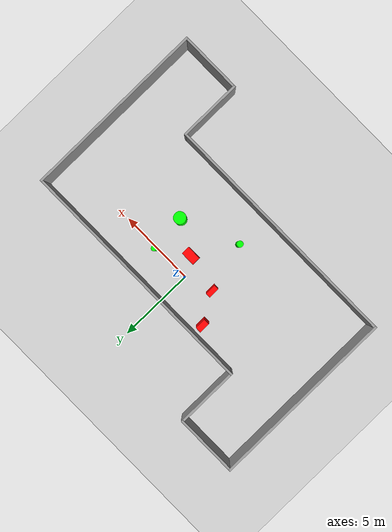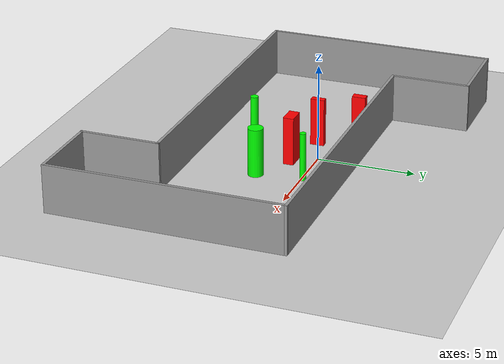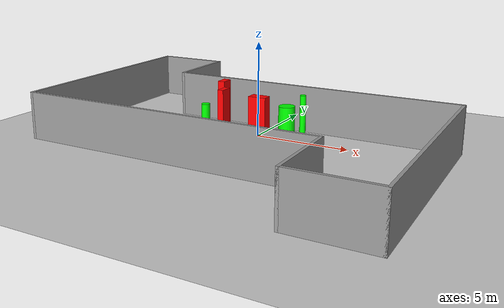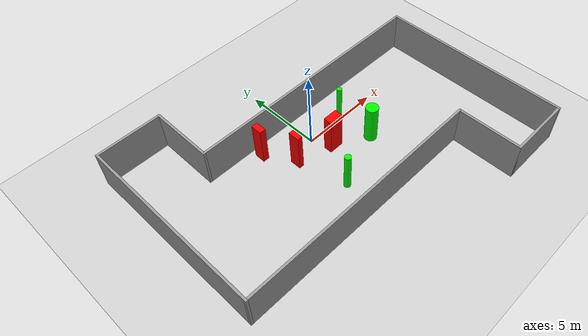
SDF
<sdf version="1.7">
 <world name="default">
  <light name="sun" type="directional">
   <pose>0 0 10 0 -0 0</pose>
   <diffuse>0.8 0.8 0.8 1</diffuse>
   <specular>0.2 0.2 0.2 1</specular>
   <attenuation>
    <range>1000</range>
    <constant>0.9</constant>
    <linear>0.01</linear>
    <quadratic>0.001</quadratic>
   </attenuation>
   <direction>-0.5 0.1 -0.9</direction>
   <spot><inner_angle>0</inner_angle><outer_angle>0</outer_angle><falloff>0</falloff></spot>
  </light>
  <model name="ground_plane">
   <static>1</static>
   <link name="link">
    <collision name="collision">
     <geometry><plane><normal>0 0 1</normal><size>100 100</size></plane></geometry>
     <surface>
      <contact><collide_bitmask>65535</collide_bitmask></contact>
      <friction><ode><mu>100</mu><mu2>50</mu2></ode></friction>
     </surface>
    </collision>
    <visual name="visual">
     <cast_shadows>0</cast_shadows>
     <geometry><plane><normal>0 0 1</normal><size>100 100</size></plane></geometry>
     <material>
      <script><uri>file://media/materials/scripts/gazebo.material</uri><name>Gazebo/Grey</name></script>
     </material>
    </visual>
   </link>
  </model>
  <gravity>0 0 -9.8</gravity>
  <magnetic_field>6e-06 2.3e-05 -4.2e-05</magnetic_field>
  <atmosphere type="adiabatic"/>
  <physics type="ode">
   <max_step_size>0.001</max_step_size>
   <real_time_factor>1</real_time_factor>
   <real_time_update_rate>1000</real_time_update_rate>
  </physics>
  <scene><ambient>0.4 0.4 0.4 1</ambient><background>0.7 0.7 0.7 1</background><shadows>1</shadows></scene>
  <spherical_coordinates>
   <surface_model>EARTH_WGS84</surface_model>
   <latitude_deg>0</latitude_deg>
   <longitude_deg>0</longitude_deg>
   <elevation>0</elevation>
   <heading_deg>0</heading_deg>
  </spherical_coordinates>
  <model name="my_base_walls">
   <link name="Wall_13">
    <collision name="Wall_13_Collision">
     <geometry><box><size>12.15 0.15 2.5</size></box></geometry>
     <pose>0 0 1.25 0 -0 0</pose>
    </collision>
    <visual name="Wall_13_Visual">
     <pose>0 0 1.25 0 -0 0</pose>
     <geometry><box><size>12.15 0.15 2.5</size></box></geometry>
     <material>
      <script><uri>file://media/materials/scripts/gazebo.material</uri><name>Gazebo/Grey</name></script>
      <ambient>1 1 1 1</ambient>
     </material>
     <meta><layer>0</layer></meta>
    </visual>
    <pose>10 -2 0 0 -0 1.5708</pose>
   </link>
   <link name="Wall_15">
    <collision name="Wall_15_Collision">
     <geometry><box><size>16.15 0.15 2.5</size></box></geometry>
     <pose>0 0 1.25 0 -0 0</pose>
    </collision>
    <visual name="Wall_15_Visual">
     <pose>0 0 1.25 0 -0 0</pose>
     <geometry><box><size>16.15 0.15 2.5</size></box></geometry>
     <material>
      <script><uri>file://media/materials/scripts/gazebo.material</uri><name>Gazebo/Grey</name></script>
      <ambient>1 1 1 1</ambient>
     </material>
     <meta><layer>0</layer></meta>
    </visual>
    <pose>2 4 0 0 -0 3.14159</pose>
   </link>
   <link name="Wall_17">
    <collision name="Wall_17_Collision">
     <geometry><box><size>4.15 0.15 2.5</size></box></geometry>
     <pose>0 0 1.25 0 -0 0</pose>
    </collision>
    <visual name="Wall_17_Visual">
     <pose>0 0 1.25 0 -0 0</pose>
     <geometry><box><size>4.15 0.15 2.5</size></box></geometry>
     <material>
      <script><uri>file://media/materials/scripts/gazebo.material</uri><name>Gazebo/Grey</name></script>
      <ambient>1 1 1 1</ambient>
     </material>
     <meta><layer>0</layer></meta>
    </visual>
    <pose>6 -6 0 0 -0 -1.5708</pose>
   </link>
   <link name="Wall_19">
    <collision name="Wall_19_Collision">
     <geometry><box><size>12.15 0.15 2.5</size></box></geometry>
     <pose>0 0 1.25 0 -0 0</pose>
    </collision>
    <visual name="Wall_19_Visual">
     <pose>0 0 1.25 0 -0 0</pose>
     <geometry><box><size>12.15 0.15 2.5</size></box></geometry>
     <material>
      <script><uri>file://media/materials/scripts/gazebo.material</uri><name>Gazebo/Grey</name></script>
      <ambient>1 1 1 1</ambient>
     </material>
     <meta><layer>0</layer></meta>
    </visual>
    <pose>-10 2 0 0 -0 1.5708</pose>
   </link>
   <link name="Wall_21">
    <collision name="Wall_21_Collision">
     <geometry><box><size>4.15 0.15 2.5</size></box></geometry>
     <pose>0 0 1.25 0 -0 0</pose>
    </collision>
    <visual name="Wall_21_Visual">
     <pose>0 0 1.25 0 -0 0</pose>
     <geometry><box><size>4.15 0.15 2.5</size></box></geometry>
     <material>
      <script><uri>file://media/materials/scripts/gazebo.material</uri><name>Gazebo/Grey</name></script>
      <ambient>1 1 1 1</ambient>
     </material>
     <meta><layer>0</layer></meta>
    </visual>
    <pose>-8 8 0 0 -0 0</pose>
   </link>
   <link name="Wall_23">
    <collision name="Wall_23_Collision">
     <geometry><box><size>4.15 0.15 2.5</size></box></geometry>
     <pose>0 0 1.25 0 -0 0</pose>
    </collision>
    <visual name="Wall_23_Visual">
     <pose>0 0 1.25 0 -0 0</pose>
     <geometry><box><size>4.15 0.15 2.5</size></box></geometry>
     <material>
      <script><uri>file://media/materials/scripts/gazebo.material</uri><name>Gazebo/Grey</name></script>
      <ambient>1 1 1 1</ambient>
     </material>
     <meta><layer>0</layer></meta>
    </visual>
    <pose>-6 6 0 0 -0 -1.5708</pose>
   </link>
   <link name="Wall_25">
    <collision name="Wall_25_Collision">
     <geometry><box><size>4.15 0.15 2.5</size></box></geometry>
     <pose>0 0 1.25 0 -0 0</pose>
    </collision>
    <visual name="Wall_25_Visual">
     <pose>0 0 1.25 0 -0 0</pose>
     <geometry><box><size>4.15 0.15 2.5</size></box></geometry>
     <material>
      <script><uri>file://media/materials/scripts/gazebo.material</uri><name>Gazebo/Grey</name></script>
      <ambient>1 1 1 1</ambient>
     </material>
     <meta><layer>0</layer></meta>
    </visual>
    <pose>8 -8 0 0 -0 0</pose>
   </link>
   <link name="Wall_9">
    <collision name="Wall_9_Collision">
     <geometry><box><size>16.15 0.15 2.5</size></box></geometry>
     <pose>0 0 1.25 0 -0 0</pose>
    </collision>
    <visual name="Wall_9_Visual">
     <pose>0 0 1.25 0 -0 0</pose>
     <geometry><box><size>16.15 0.15 2.5</size></box></geometry>
     <material>
      <script><uri>file://media/materials/scripts/gazebo.material</uri><name>Gazebo/Grey</name></script>
      <ambient>1 1 1 1</ambient>
     </material>
     <meta><layer>0</layer></meta>
    </visual>
    <pose>-2 -4 0 0 -0 3.14159</pose>
   </link>
   <static>1</static>
   <pose>-0 -2 0 0 -0 0</pose>
  </model>
  <model name="cylinder1">
   <static>1</static>
   <link name="link">
    <inertial>
     <mass>1</mass>
     <inertia><ixx>0.5</ixx><ixy>0</ixy><ixz>0</ixz><iyy>0.5</iyy><iyz>0</iyz><izz>1</izz></inertia>
    </inertial>
    <collision name="collision">
     <geometry><cylinder><radius>0.3918550057563066</radius><length>2.5</length></cylinder></geometry>
    </collision>
    <visual name="visual">
     <geometry><cylinder><radius>0.3918550057563066</radius><length>2.5</length></cylinder></geometry>
     <material>
      <ambient>0 1 0 1</ambient>
      <diffuse>0 1 0 1</diffuse>
      <specular>0.1 0.1 0.1 1</specular>
      <emissive>0 0 0 0</emissive>
     </material>
    </visual>
   </link>
   <pose>2.710437666546291 -2.2889374997301575 1.25 0 0 0</pose>
  </model>
  <model name="cylinder2">
   <static>1</static>
   <link name="link">
    <inertial>
     <mass>1</mass>
     <inertia><ixx>0.5</ixx><ixy>0</ixy><ixz>0</ixz><iyy>0.5</iyy><iyz>0</iyz><izz>1</izz></inertia>
    </inertial>
    <collision name="collision">
     <geometry><cylinder><radius>0.20399306593085706</radius><length>2.5</length></cylinder></geometry>
    </collision>
    <visual name="visual">
     <geometry><cylinder><radius>0.20399306593085706</radius><length>2.5</length></cylinder></geometry>
     <material>
      <ambient>0 1 0 1</ambient>
      <diffuse>0 1 0 1</diffuse>
      <specular>0.1 0.1 0.1 1</specular>
      <emissive>0 0 0 0</emissive>
     </material>
    </visual>
   </link>
   <pose>-0.8872114177713453 -3.746189830247668 1.25 0 0 0</pose>
  </model>
  <model name="cylinder3">
   <static>1</static>
   <link name="link">
    <inertial>
     <mass>1</mass>
     <inertia><ixx>0.5</ixx><ixy>0</ixy><ixz>0</ixz><iyy>0.5</iyy><iyz>0</iyz><izz>1</izz></inertia>
    </inertial>
    <collision name="collision">
     <geometry><cylinder><radius>0.1562448180153448</radius><length>2.5</length></cylinder></geometry>
    </collision>
    <visual name="visual">
     <geometry><cylinder><radius>0.1562448180153448</radius><length>2.5</length></cylinder></geometry>
     <material>
      <ambient>0 1 0 1</ambient>
      <diffuse>0 1 0 1</diffuse>
      <specular>0.1 0.1 0.1 1</specular>
      <emissive>0 0 0 0</emissive>
     </material>
    </visual>
   </link>
   <pose>2.5055853832371255 0.08435377297071955 1.25 0 0 0</pose>
  </model>
  <model name="box1">
   <static>1</static>
   <link name="link">
    <inertial>
     <mass>1</mass>
     <inertia><ixx>0.083</ixx><ixy>0</ixy><ixz>0</ixz><iyy>0.083</iyy><iyz>0</iyz><izz>0.083</izz></inertia>
    </inertial>
    <collision name="collision">
     <geometry><box><size>0.31989895796868667 0.7102662371481887 2.5</size></box></geometry>
    </collision>
    <visual name="visual">
     <geometry><box><size>0.31989895796868667 0.7102662371481887 2.5</size></box></geometry>
     <material>
      <ambient>1 0 0 1</ambient>
      <diffuse>1 0 0 1</diffuse>
      <specular>0.1 0.1 0.1 1</specular>
      <emissive>0 0 0 0</emissive>
     </material>
    </visual>
    <sensor name="my_contact" type="contact">
     <contact><collision>box_collision</collision><topic>__default_topic__</topic></contact>
    </sensor>
   </link>
   <pose>-1.7350005005008668 -0.6176603554506785 1.25 0 0 0</pose>
  </model>
  <model name="box2">
   <static>1</static>
   <link name="link">
    <inertial>
     <mass>1</mass>
     <inertia><ixx>0.083</ixx><ixy>0</ixy><ixz>0</ixz><iyy>0.083</iyy><iyz>0</iyz><izz>0.083</izz></inertia>
    </inertial>
    <collision name="collision">
     <geometry><box><size>0.9326628612598971 0.5454724666575207 2.5</size></box></geometry>
    </collision>
    <visual name="visual">
     <geometry><box><size>0.9326628612598971 0.5454724666575207 2.5</size></box></geometry>
     <material>
      <ambient>1 0 0 1</ambient>
      <diffuse>1 0 0 1</diffuse>
      <specular>0.1 0.1 0.1 1</specular>
      <emissive>0 0 0 0</emissive>
     </material>
    </visual>
    <sensor name="my_contact" type="contact">
     <contact><collision>box_collision</collision><topic>__default_topic__</topic></contact>
    </sensor>
   </link>
   <pose>0.6579471800035348 -1.1845926979164751 1.25 0 0 0</pose>
  </model>
  <model name="box3">
   <static>1</static>
   <link name="link">
    <inertial>
     <mass>1</mass>
     <inertia><ixx>0.083</ixx><ixy>0</ixy><ixz>0</ixz><iyy>0.083</iyy><iyz>0</iyz><izz>0.083</izz></inertia>
    </inertial>
    <collision name="collision">
     <geometry><box><size>0.39068160755085996 0.6969509411880341 2.5</size></box></geometry>
    </collision>
    <visual name="visual">
     <geometry><box><size>0.39068160755085996 0.6969509411880341 2.5</size></box></geometry>
     <material>
      <ambient>1 0 0 1</ambient>
      <diffuse>1 0 0 1</diffuse>
      <specular>0.1 0.1 0.1 1</specular>
      <emissive>0 0 0 0</emissive>
     </material>
    </visual>
    <sensor name="my_contact" type="contact">
     <contact><collision>box_collision</collision><topic>__default_topic__</topic></contact>
    </sensor>
   </link>
   <pose>-2.7866191064949284 1.2265520976929718 1.25 0 0 0</pose>
  </model>
 </world>
</sdf>
